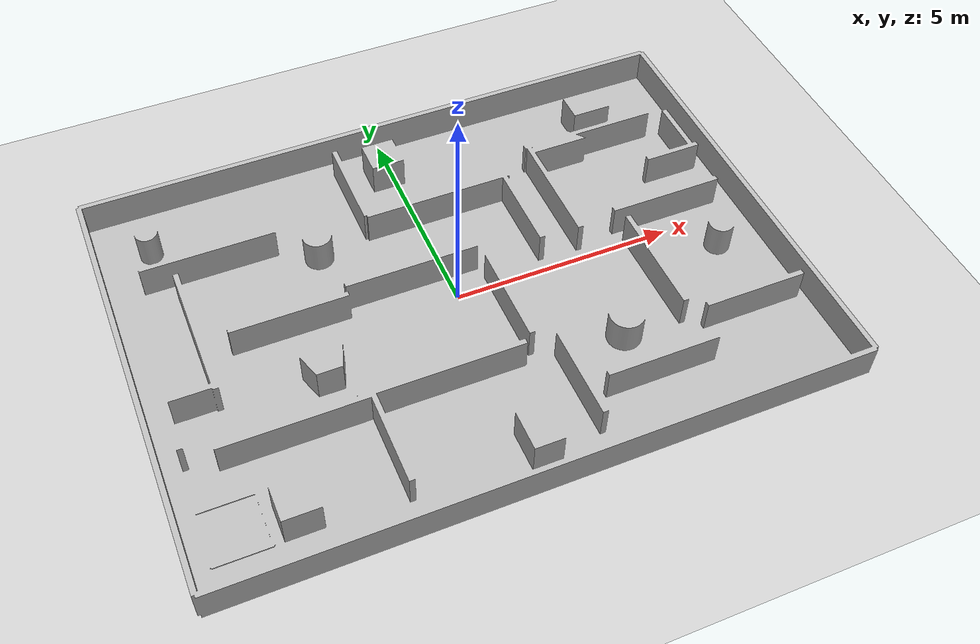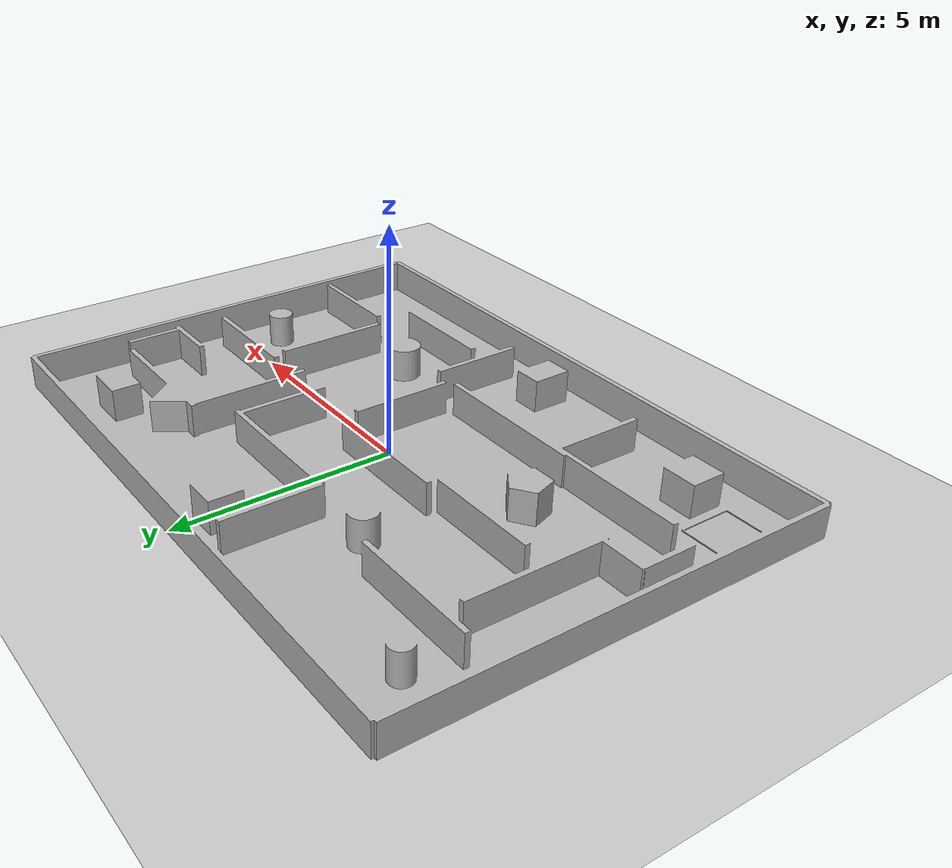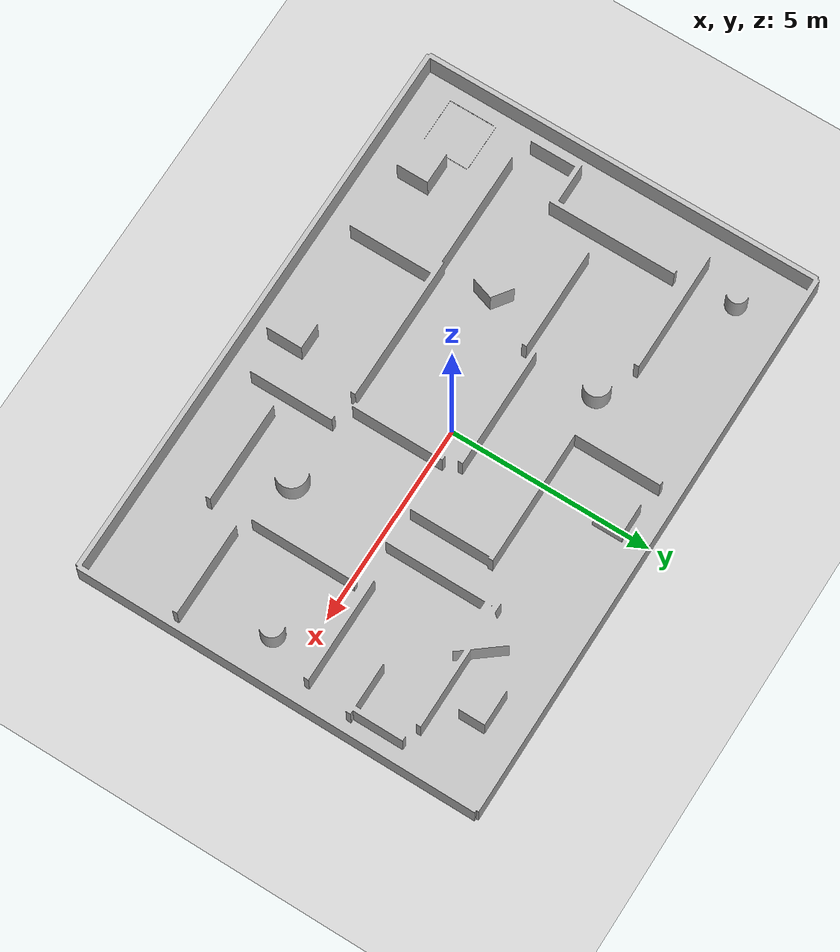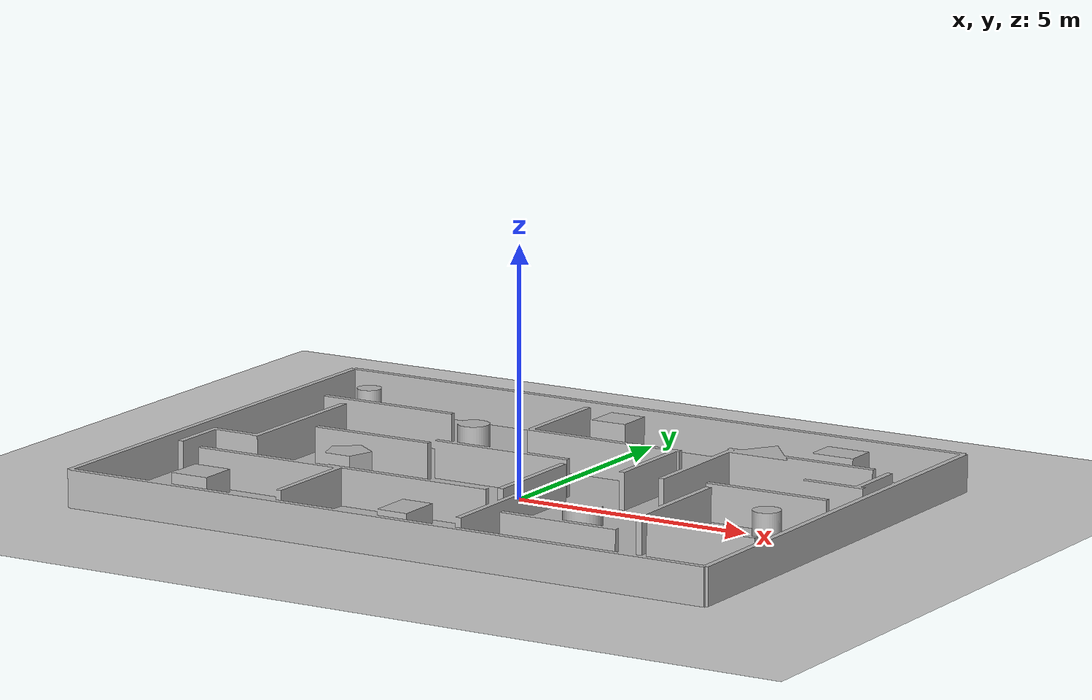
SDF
<?xml version="1.0" ?>
<sdf version="1.9">
  <world name="empty">

    <plugin
      filename="ignition-gazebo-physics-system"
      name="ignition::gazebo::systems::Physics"/>

    <plugin
      filename="ignition-gazebo-user-commands-system"
      name="ignition::gazebo::systems::UserCommands"/>

    <plugin
      filename="ignition-gazebo-scene-broadcaster-system"
      name="ignition::gazebo::systems::SceneBroadcaster"/>

    <plugin
      filename="ignition-gazebo-sensors-system"
      name="ignition::gazebo::systems::Sensors">
      <render_engine>ogre2</render_engine>
    </plugin>

    <light name="sun" type="directional">
      <pose>0 0 10 0 0 0</pose>
      <direction>-0.5 0.1 -0.9</direction>
    </light>

    <model name="ground_plane">
      <static>true</static>
      <link name="link">
        <collision name="collision">
          <geometry>
            <plane>
              <normal>0 0 1</normal>
              <size>100 100</size>
            </plane>
          </geometry>
        </collision>
        <visual name="visual">
          <geometry>
            <plane>
              <normal>0 0 1</normal>
              <size>100 100</size>
            </plane>
          </geometry>
        </visual>
      </link>
    </model>

    <!-- Static STL map. Put ROS2MAP.STL inside a Gazebo model folder:
         ROS2MAP/meshes/ROS2MAP.STL
         If your STL was exported in millimeters, change scale from 1 1 1 to 0.001 0.001 0.001. -->
    <model name="ros2map">
      <static>true</static>
      <pose>0 0 0 0 0 0</pose>
      <link name="link">
        <visual name="visual">
          <geometry>
            <mesh>
            <uri>models/meshes/robotino_slam_practice_arena.stl</uri>
              <scale>1 1 1</scale>
            </mesh>
          </geometry>
        </visual>
        <collision name="collision">
          <geometry>
            <mesh>
              <uri>models/meshes/robotino_slam_practice_arena.stl</uri>
              <scale>1 1 1</scale>
            </mesh>
          </geometry>
        </collision>
      </link>
    </model>

  </world>
</sdf>
